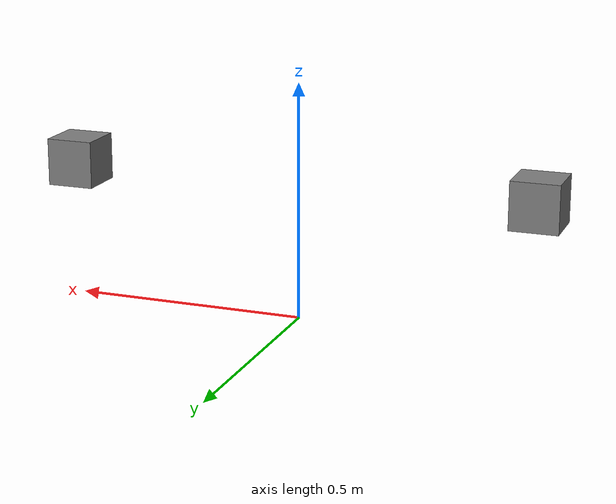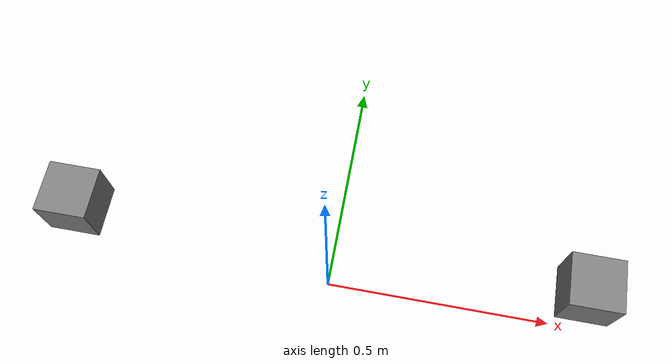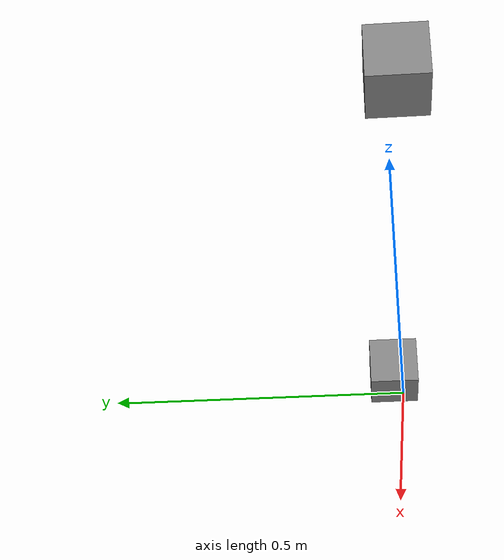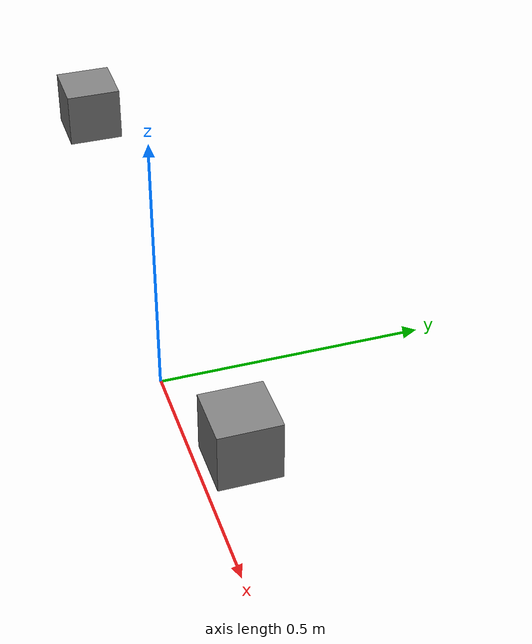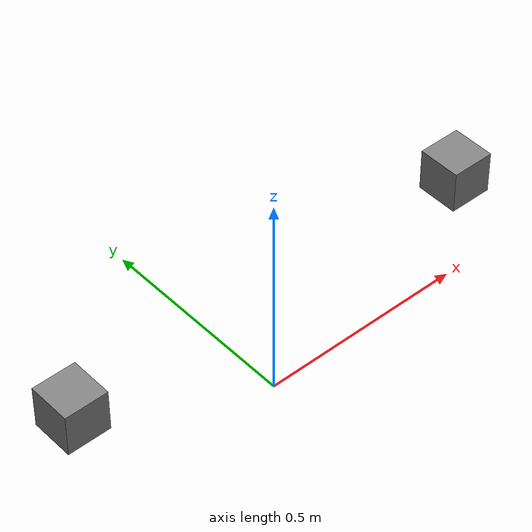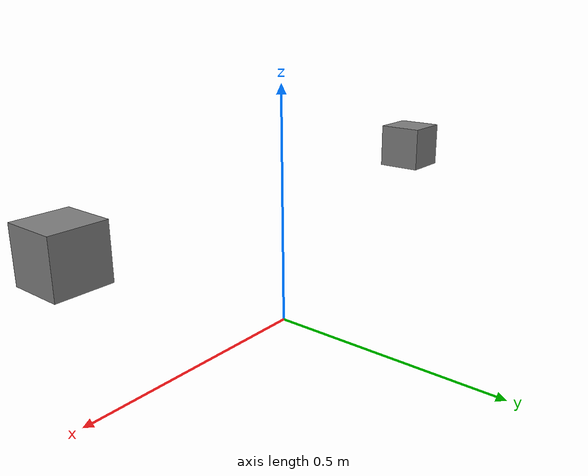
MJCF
<mujoco model="solimp-compare">
  <option gravity="0 0 0" timestep="0.002"/>
  <worldbody>
    <body name="narrow_body" pos="-0.5 0 0.3">
      <joint name="narrow" type="slide" axis="1 0 0"
             limited="true" range="-0.5 0.3" damping="5.0"
             solimplimit="0.01 0.99 0.001 0.5 2.0"/>
      <geom type="box" size="0.05 0.05 0.05" mass="1.0"/>
    </body>
    <body name="wide_body" pos="0.5 0 0.3">
      <joint name="wide" type="slide" axis="1 0 0"
             limited="true" range="-0.5 0.3" damping="5.0"
             solimplimit="0.01 0.99 0.5 0.5 2.0"/>
      <geom type="box" size="0.05 0.05 0.05" mass="1.0"/>
    </body>
  </worldbody>
  <actuator>
    <motor name="push_narrow" joint="narrow" gear="1"/>
    <motor name="push_wide" joint="wide" gear="1"/>
  </actuator>
</mujoco>
